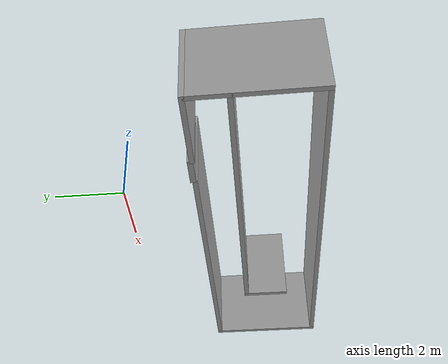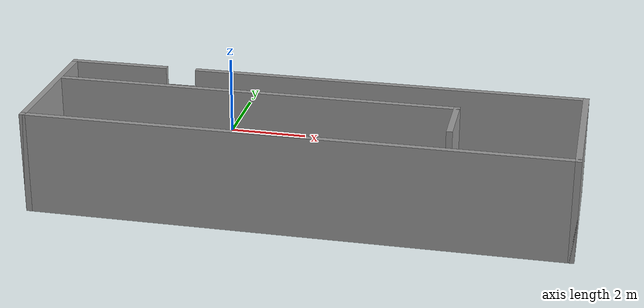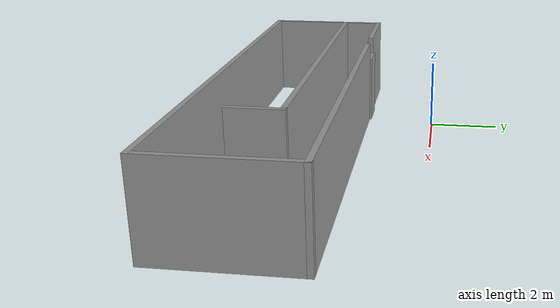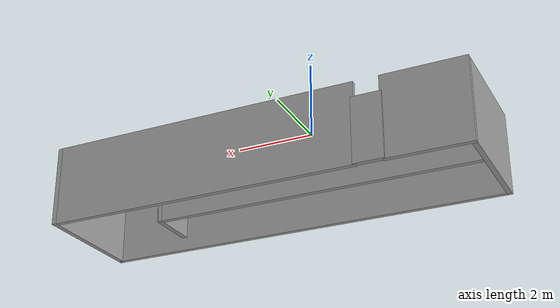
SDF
<?xml version='1.0'?>
<sdf version='1.7'>
  <model name='heloo'>
    <pose>2.895 -2.8825 0 0 -0 0</pose>
    <link name='Door_0'>
      <collision name='Door_0_Collision'>
        <geometry>
          <box>
            <size>0.9 0.17 2</size>
          </box>
        </geometry>
        <pose>0 0 1 0 -0 0</pose>
      </collision>
      <visual name='Door_0_Visual'>
        <pose>0 0 1 0 -0 0</pose>
        <geometry>
          <box>
            <size>0.9 0.17 2</size>
          </box>
        </geometry>
        <material>
          <script>
            <uri>file://media/materials/scripts/gazebo.material</uri>
            <name>Gazebo/Grey</name>
          </script>
        </material>
      </visual>
      <pose>-3.62358 0.842506 0 0 -0 0</pose>
    </link>
    <link name='Wall_0'>
      <collision name='Wall_0_Collision'>
        <geometry>
          <box>
            <size>2.5 0.15 2.5</size>
          </box>
        </geometry>
        <pose>0 0 1.25 0 -0 0</pose>
      </collision>
      <visual name='Wall_0_Visual'>
        <pose>0 0 1.25 0 -0 0</pose>
        <geometry>
          <box>
            <size>2.5 0.15 2.5</size>
          </box>
        </geometry>
        <material>
          <script>
            <uri>file://media/materials/scripts/gazebo.material</uri>
            <name>Gazebo/Grey</name>
          </script>
          <ambient>1 1 1 1</ambient>
        </material>
        <meta>
          <layer>0</layer>
        </meta>
      </visual>
      <pose>-5.25 0.7925 0 0 -0 3.14159</pose>
    </link>
    <link name='Wall_1'>
      <collision name='Wall_1_Collision'>
        <geometry>
          <box>
            <size>3.75 0.15 2.5</size>
          </box>
        </geometry>
        <pose>0 0 1.25 0 -0 0</pose>
      </collision>
      <visual name='Wall_1_Visual'>
        <pose>0 0 1.25 0 -0 0</pose>
        <geometry>
          <box>
            <size>3.75 0.15 2.5</size>
          </box>
        </geometry>
        <material>
          <script>
            <uri>file://media/materials/scripts/gazebo.material</uri>
            <name>Gazebo/Grey</name>
          </script>
          <ambient>1 1 1 1</ambient>
        </material>
        <meta>
          <layer>0</layer>
        </meta>
      </visual>
      <pose>-6.425 -1.0075 0 0 -0 -1.5708</pose>
    </link>
    <link name='Wall_2'>
      <collision name='Wall_2_Collision'>
        <geometry>
          <box>
            <size>13 0.15 2.5</size>
          </box>
        </geometry>
        <pose>0 0 1.25 0 -0 0</pose>
      </collision>
      <visual name='Wall_2_Visual'>
        <pose>0 0 1.25 0 -0 0</pose>
        <geometry>
          <box>
            <size>13 0.15 2.5</size>
          </box>
        </geometry>
        <material>
          <script>
            <uri>file://media/materials/scripts/gazebo.material</uri>
            <name>Gazebo/Grey</name>
          </script>
          <ambient>1 1 1 1</ambient>
        </material>
        <meta>
          <layer>0</layer>
        </meta>
      </visual>
      <pose>-0 -2.8075 0 0 -0 0</pose>
    </link>
    <link name='Wall_3'>
      <collision name='Wall_3_Collision'>
        <geometry>
          <box>
            <size>3.75 0.15 2.5</size>
          </box>
        </geometry>
        <pose>0 0 1.25 0 -0 0</pose>
      </collision>
      <visual name='Wall_3_Visual'>
        <pose>0 0 1.25 0 -0 0</pose>
        <geometry>
          <box>
            <size>3.75 0.15 2.5</size>
          </box>
        </geometry>
        <material>
          <script>
            <uri>file://media/materials/scripts/gazebo.material</uri>
            <name>Gazebo/Grey</name>
          </script>
          <ambient>1 1 1 1</ambient>
        </material>
        <meta>
          <layer>0</layer>
        </meta>
      </visual>
      <pose>6.425 -1.0075 0 0 -0 1.5708</pose>
    </link>
    <link name='Wall_4'>
      <collision name='Wall_4_Collision'>
        <geometry>
          <box>
            <size>9.75 0.15 2.5</size>
          </box>
        </geometry>
        <pose>0 0 1.25 0 -0 0</pose>
      </collision>
      <visual name='Wall_4_Visual'>
        <pose>0 0 1.25 0 -0 0</pose>
        <geometry>
          <box>
            <size>9.75 0.15 2.5</size>
          </box>
        </geometry>
        <material>
          <script>
            <uri>file://media/materials/scripts/gazebo.material</uri>
            <name>Gazebo/Grey</name>
          </script>
          <ambient>1 1 1 1</ambient>
        </material>
        <meta>
          <layer>0</layer>
        </meta>
      </visual>
      <pose>1.625 0.7925 0 0 -0 3.14159</pose>
    </link>
    <link name='Wall_6'>
      <collision name='Wall_6_Collision'>
        <geometry>
          <box>
            <size>10 0.15 2.5</size>
          </box>
        </geometry>
        <pose>0 0 1.25 0 -0 0</pose>
      </collision>
      <visual name='Wall_6_Visual'>
        <pose>0 0 1.25 0 -0 0</pose>
        <geometry>
          <box>
            <size>10 0.15 2.5</size>
          </box>
        </geometry>
        <material>
          <script>
            <uri>file://media/materials/scripts/gazebo.material</uri>
            <name>Gazebo/Grey</name>
          </script>
          <ambient>1 1 1 1</ambient>
        </material>
        <meta>
          <layer>0</layer>
        </meta>
      </visual>
      <pose>-1.45969 -0.384781 0 0 -0 0</pose>
    </link>
    <link name='Wall_7'>
      <collision name='Wall_7_Collision'>
        <geometry>
          <box>
            <size>1.5 0.15 2.5</size>
          </box>
        </geometry>
        <pose>0 0 1.25 0 -0 0</pose>
      </collision>
      <visual name='Wall_7_Visual'>
        <pose>0 0 1.25 0 -0 0</pose>
        <geometry>
          <box>
            <size>1.5 0.15 2.5</size>
          </box>
        </geometry>
        <material>
          <script>
            <uri>file://media/materials/scripts/gazebo.material</uri>
            <name>Gazebo/Grey</name>
          </script>
          <ambient>1 1 1 1</ambient>
        </material>
        <meta>
          <layer>0</layer>
        </meta>
      </visual>
      <pose>3.46531 -1.05978 0 0 -0 -1.5708</pose>
    </link>
    <static>1</static>
  </model>
</sdf>
